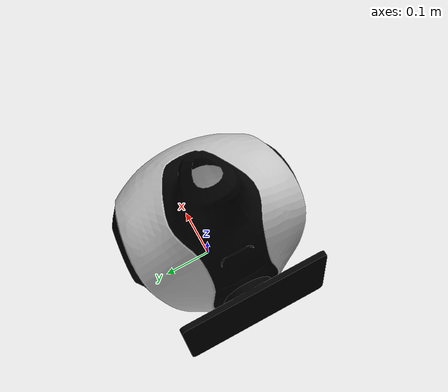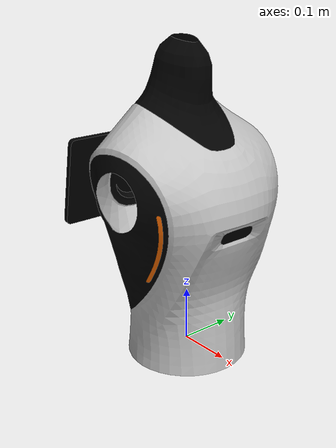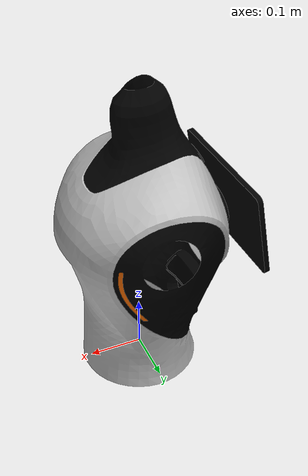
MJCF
<mujoco model="body_link5">
  <default>
    <default class="visual">
      <geom group="2" type="mesh" contype="0" conaffinity="0"/>
    </default>
    <default class="collision">
      <geom group="3" type="mesh"/>
    </default>
  </default>
  <asset>
    <material name="material_body_link5_0" specular="0.20000000000000004" shininess="1.0" rgba="0.76470588 0.76470588 0.76470588 1.0"/>
    <material name="material_body_link5_1" specular="0.20000000000000004" shininess="1.0" rgba="0.00000000 0.00000000 0.00000000 1.0"/>
    <material name="material_body_link5_2" specular="0.20000000000000004" shininess="1.0" rgba="0.98039216 0.43137255 0.00000000 1.0"/>
    <mesh file="body_link5_0.obj"/>
    <mesh file="body_link5_1.obj"/>
    <mesh file="body_link5_2.obj"/>
  </asset>
  <worldbody>
    <body name="body_link5">
      <geom mesh="body_link5_0" material="material_body_link5_2" class="visual"/>
      <geom mesh="body_link5_1" material="material_body_link5_1" class="visual"/>
      <geom mesh="body_link5_2" material="material_body_link5_0" class="visual"/>
      <geom mesh="body_link5_0" class="collision"/>
      <geom mesh="body_link5_1" class="collision"/>
      <geom mesh="body_link5_2" class="collision"/>
    </body>
  </worldbody>
</mujoco>
